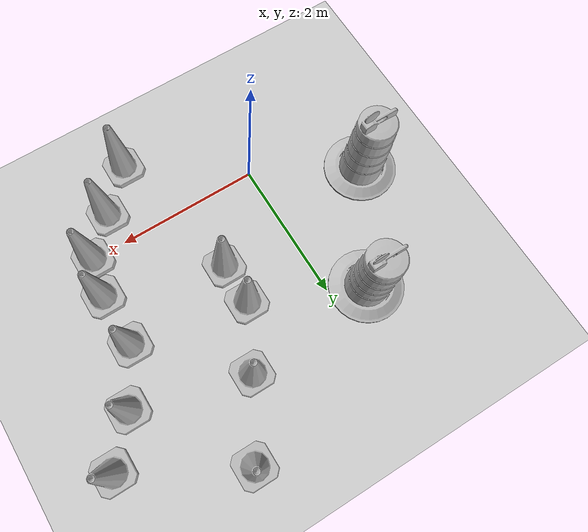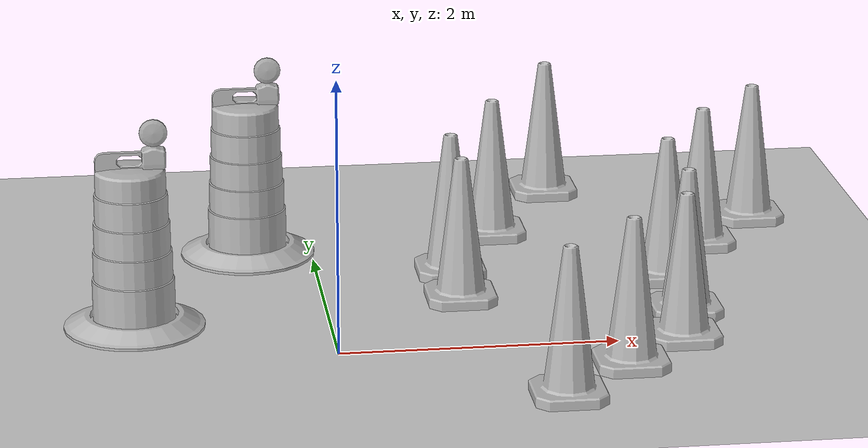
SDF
<sdf version="1.7">
 <world name="default">
  <light name="sun" type="directional">
   <pose>0 0 10 0 -0 0</pose>
   <diffuse>0.8 0.8 0.8 1</diffuse>
   <specular>0.2 0.2 0.2 1</specular>
   <attenuation>
    <range>1000</range>
    <constant>0.9</constant>
    <linear>0.01</linear>
    <quadratic>0.001</quadratic>
   </attenuation>
   <direction>-0.5 0.1 -0.9</direction>
   <spot><inner_angle>0</inner_angle><outer_angle>0</outer_angle><falloff>0</falloff></spot>
  </light>
  <model name="ground_plane">
   <static>1</static>
   <link name="link">
    <collision name="collision">
     <geometry><plane><normal>0 0 1</normal><size>100 100</size></plane></geometry>
     <surface>
      <contact><collide_bitmask>65535</collide_bitmask></contact>
      <friction><ode><mu>100</mu><mu2>50</mu2></ode></friction>
     </surface>
    </collision>
    <visual name="visual">
     <cast_shadows>0</cast_shadows>
     <geometry><plane><normal>0 0 1</normal><size>100 100</size></plane></geometry>
     <material>
      <script><uri>file://media/materials/scripts/gazebo.material</uri><name>Gazebo/Grey</name></script>
     </material>
    </visual>
   </link>
  </model>
  <gravity>0 0 -9.8</gravity>
  <magnetic_field>6e-06 2.3e-05 -4.2e-05</magnetic_field>
  <atmosphere type="adiabatic"/>
  <physics type="ode">
   <max_step_size>0.001</max_step_size>
   <real_time_factor>1</real_time_factor>
   <real_time_update_rate>1000</real_time_update_rate>
  </physics>
  <scene><ambient>0.4 0.4 0.4 1</ambient><background>0.7 0.7 0.7 1</background><shadows>1</shadows></scene>
  <audio><device>default</device></audio>
  <spherical_coordinates>
   <surface_model>EARTH_WGS84</surface_model>
   <latitude_deg>0</latitude_deg>
   <longitude_deg>0</longitude_deg>
   <elevation>0</elevation>
   <heading_deg>0</heading_deg>
  </spherical_coordinates>
  <model name="Construction Barrel">
   <link name="link">
    <inertial>
     <pose>0 0 0.4 0 -0 0</pose>
     <mass>500</mass>
     <inertia><ixx>51.2096</ixx><iyy>51.2096</iyy><izz>25</izz><ixy>0</ixy><ixz>0</ixz><iyz>0</iyz></inertia>
    </inertial>
    <collision name="collision">
     <geometry><mesh><uri>model://construction_barrel/meshes/construction_barrel.dae</uri></mesh></geometry>
    </collision>
    <visual name="visual">
     <geometry><mesh><uri>model://construction_barrel/meshes/construction_barrel.dae</uri></mesh></geometry>
    </visual>
   </link>
   <pose>-1.40355 0.736008 -3e-06 -6e-06 -5e-06 -2.8e-05</pose>
  </model>
  <model name="Construction Barrel_0">
   <link name="link">
    <inertial>
     <pose>0 0 0.4 0 -0 0</pose>
     <mass>500</mass>
     <inertia><ixx>51.2096</ixx><iyy>51.2096</iyy><izz>25</izz><ixy>0</ixy><ixz>0</ixz><iyz>0</iyz></inertia>
    </inertial>
    <collision name="collision">
     <geometry><mesh><uri>model://construction_barrel/meshes/construction_barrel.dae</uri></mesh></geometry>
    </collision>
    <visual name="visual">
     <geometry><mesh><uri>model://construction_barrel/meshes/construction_barrel.dae</uri></mesh></geometry>
    </visual>
   </link>
   <pose>-0.481706 2.21994 -2e-06 0 7e-06 -2.8e-05</pose>
  </model>
  <model name="Construction Cone">
   <link name="link">
    <collision name="collision">
     <geometry>
      <mesh><scale>10 10 10</scale><uri>model://construction_cone/meshes/construction_cone.dae</uri></mesh>
     </geometry>
    </collision>
    <visual name="visual">
     <geometry>
      <mesh><scale>10 10 10</scale><uri>model://construction_cone/meshes/construction_cone.dae</uri></mesh>
     </geometry>
    </visual>
    <inertial>
     <inertia><ixx>1</ixx><ixy>0</ixy><ixz>0</ixz><iyy>1</iyy><iyz>0</iyz><izz>1</izz></inertia>
     <mass>1</mass>
    </inertial>
   </link>
   <pose>1.46853 -1 -0 0 -0 0</pose>
  </model>
  <model name="Construction Cone_0">
   <link name="link">
    <collision name="collision">
     <geometry>
      <mesh><scale>10 10 10</scale><uri>model://construction_cone/meshes/construction_cone.dae</uri></mesh>
     </geometry>
    </collision>
    <visual name="visual">
     <geometry>
      <mesh><scale>10 10 10</scale><uri>model://construction_cone/meshes/construction_cone.dae</uri></mesh>
     </geometry>
    </visual>
    <inertial>
     <inertia><ixx>1</ixx><ixy>0</ixy><ixz>0</ixz><iyy>1</iyy><iyz>0</iyz><izz>1</izz></inertia>
     <mass>1</mass>
    </inertial>
   </link>
   <pose>2 -0.468621 -8e-06 7e-06 -0 0</pose>
  </model>
  <model name="Construction Cone_1">
   <link name="link">
    <collision name="collision">
     <geometry>
      <mesh><scale>10 10 10</scale><uri>model://construction_cone/meshes/construction_cone.dae</uri></mesh>
     </geometry>
    </collision>
    <visual name="visual">
     <geometry>
      <mesh><scale>10 10 10</scale><uri>model://construction_cone/meshes/construction_cone.dae</uri></mesh>
     </geometry>
    </visual>
    <inertial>
     <inertia><ixx>1</ixx><ixy>0</ixy><ixz>0</ixz><iyy>1</iyy><iyz>0</iyz><izz>1</izz></inertia>
     <mass>1</mass>
    </inertial>
   </link>
   <pose>2.46745 0 -0 0 -1e-06 0</pose>
  </model>
  <model name="Construction Cone_2">
   <link name="link">
    <collision name="collision">
     <geometry>
      <mesh><scale>10 10 10</scale><uri>model://construction_cone/meshes/construction_cone.dae</uri></mesh>
     </geometry>
    </collision>
    <visual name="visual">
     <geometry>
      <mesh><scale>10 10 10</scale><uri>model://construction_cone/meshes/construction_cone.dae</uri></mesh>
     </geometry>
    </visual>
    <inertial>
     <inertia><ixx>1</ixx><ixy>0</ixy><ixz>0</ixz><iyy>1</iyy><iyz>0</iyz><izz>1</izz></inertia>
     <mass>1</mass>
    </inertial>
   </link>
   <pose>2.58935 0.534915 -0 0 -1e-06 0.003117</pose>
  </model>
  <model name="Construction Cone_3">
   <link name="link">
    <collision name="collision">
     <geometry>
      <mesh><scale>10 10 10</scale><uri>model://construction_cone/meshes/construction_cone.dae</uri></mesh>
     </geometry>
    </collision>
    <visual name="visual">
     <geometry>
      <mesh><scale>10 10 10</scale><uri>model://construction_cone/meshes/construction_cone.dae</uri></mesh>
     </geometry>
    </visual>
    <inertial>
     <inertia><ixx>1</ixx><ixy>0</ixy><ixz>0</ixz><iyy>1</iyy><iyz>0</iyz><izz>1</izz></inertia>
     <mass>1</mass>
    </inertial>
   </link>
   <pose>2.58548 1.28601 -0 0 0 -0.010067</pose>
  </model>
  <model name="Construction Cone_4">
   <link name="link">
    <collision name="collision">
     <geometry>
      <mesh><scale>10 10 10</scale><uri>model://construction_cone/meshes/construction_cone.dae</uri></mesh>
     </geometry>
    </collision>
    <visual name="visual">
     <geometry>
      <mesh><scale>10 10 10</scale><uri>model://construction_cone/meshes/construction_cone.dae</uri></mesh>
     </geometry>
    </visual>
    <inertial>
     <inertia><ixx>1</ixx><ixy>0</ixy><ixz>0</ixz><iyy>1</iyy><iyz>0</iyz><izz>1</izz></inertia>
     <mass>1</mass>
    </inertial>
   </link>
   <pose>3 2 -1e-05 0 -0 0</pose>
  </model>
  <model name="Construction Cone_5">
   <link name="link">
    <collision name="collision">
     <geometry>
      <mesh><scale>10 10 10</scale><uri>model://construction_cone/meshes/construction_cone.dae</uri></mesh>
     </geometry>
    </collision>
    <visual name="visual">
     <geometry>
      <mesh><scale>10 10 10</scale><uri>model://construction_cone/meshes/construction_cone.dae</uri></mesh>
     </geometry>
    </visual>
    <inertial>
     <inertia><ixx>1</ixx><ixy>0</ixy><ixz>0</ixz><iyy>1</iyy><iyz>0</iyz><izz>1</izz></inertia>
     <mass>1</mass>
    </inertial>
   </link>
   <pose>3.50806 2.56639 -0 0 -0 0</pose>
  </model>
  <model name="Construction Cone_6">
   <link name="link">
    <collision name="collision">
     <geometry>
      <mesh><scale>10 10 10</scale><uri>model://construction_cone/meshes/construction_cone.dae</uri></mesh>
     </geometry>
    </collision>
    <visual name="visual">
     <geometry>
      <mesh><scale>10 10 10</scale><uri>model://construction_cone/meshes/construction_cone.dae</uri></mesh>
     </geometry>
    </visual>
    <inertial>
     <inertia><ixx>1</ixx><ixy>0</ixy><ixz>0</ixz><iyy>1</iyy><iyz>0</iyz><izz>1</izz></inertia>
     <mass>1</mass>
    </inertial>
   </link>
   <pose>1 1 -0 0 -0 0</pose>
  </model>
  <model name="Construction Cone_7">
   <link name="link">
    <collision name="collision">
     <geometry>
      <mesh><scale>10 10 10</scale><uri>model://construction_cone/meshes/construction_cone.dae</uri></mesh>
     </geometry>
    </collision>
    <visual name="visual">
     <geometry>
      <mesh><scale>10 10 10</scale><uri>model://construction_cone/meshes/construction_cone.dae</uri></mesh>
     </geometry>
    </visual>
    <inertial>
     <inertia><ixx>1</ixx><ixy>0</ixy><ixz>0</ixz><iyy>1</iyy><iyz>0</iyz><izz>1</izz></inertia>
     <mass>1</mass>
    </inertial>
   </link>
   <pose>1 1.58305 -0 0 -0 0</pose>
  </model>
  <model name="Construction Cone_8">
   <link name="link">
    <collision name="collision">
     <geometry>
      <mesh><scale>10 10 10</scale><uri>model://construction_cone/meshes/construction_cone.dae</uri></mesh>
     </geometry>
    </collision>
    <visual name="visual">
     <geometry>
      <mesh><scale>10 10 10</scale><uri>model://construction_cone/meshes/construction_cone.dae</uri></mesh>
     </geometry>
    </visual>
    <inertial>
     <inertia><ixx>1</ixx><ixy>0</ixy><ixz>0</ixz><iyy>1</iyy><iyz>0</iyz><izz>1</izz></inertia>
     <mass>1</mass>
    </inertial>
   </link>
   <pose>1.43295 2.42116 -0 0 -1e-06 0</pose>
  </model>
  <model name="Construction Cone_9">
   <link name="link">
    <collision name="collision">
     <geometry>
      <mesh><scale>10 10 10</scale><uri>model://construction_cone/meshes/construction_cone.dae</uri></mesh>
     </geometry>
    </collision>
    <visual name="visual">
     <geometry>
      <mesh><scale>10 10 10</scale><uri>model://construction_cone/meshes/construction_cone.dae</uri></mesh>
     </geometry>
    </visual>
    <inertial>
     <inertia><ixx>1</ixx><ixy>0</ixy><ixz>0</ixz><iyy>1</iyy><iyz>0</iyz><izz>1</izz></inertia>
     <mass>1</mass>
    </inertial>
   </link>
   <pose>2 3.40071 -0 0 -1e-06 0</pose>
  </model>
 </world>
</sdf>
